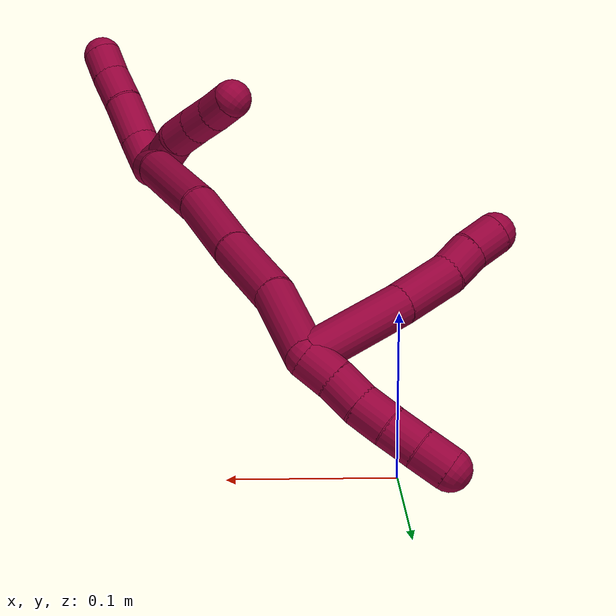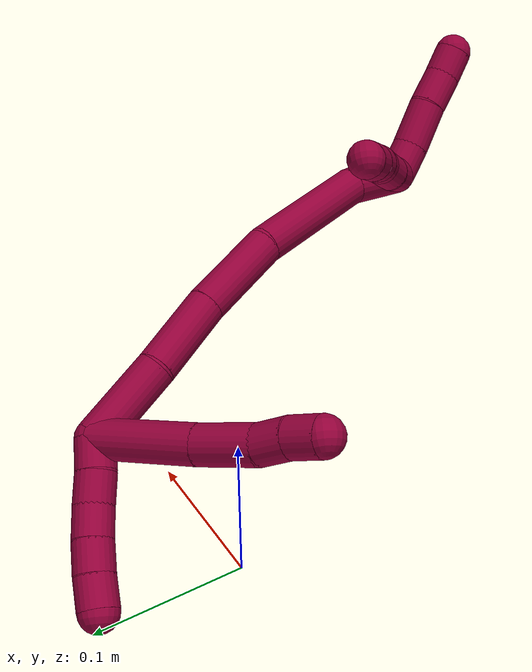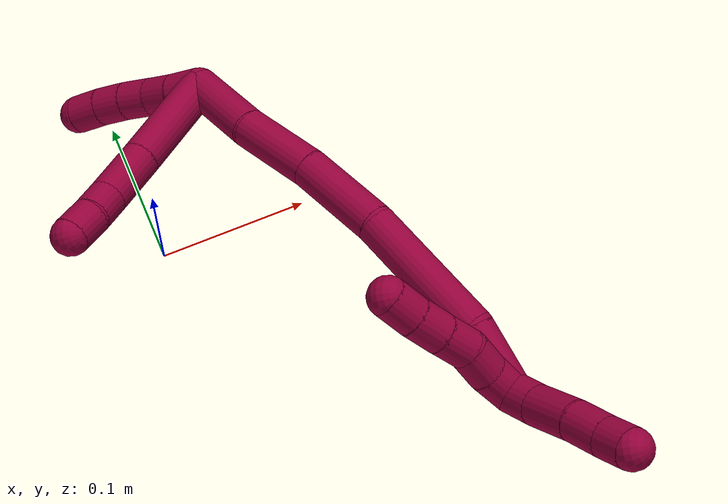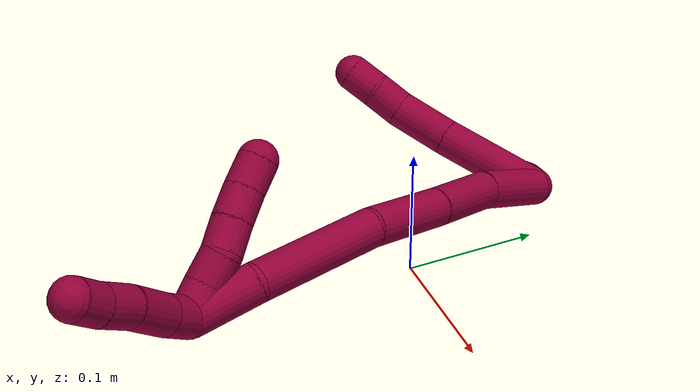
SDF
<sdf version="1.7">
 <world name="default">
  <model name="8">
   <static>0</static>
   <link name="8">
    <collision name="collision-cylinder-e_1_2_8">
     <pose>-0.028919 -0.017691 -0.008444 2.01614 -0.975088 -1.39807</pose>
     <geometry><cylinder><radius>0.0125</radius><length>0.069873</length></cylinder></geometry>
     <surface>
      <friction><ode><mu>1.16</mu><mu2>1.16</mu2><slip1>0</slip1><slip2>0</slip2></ode></friction>
      <contact><ode><kp>1e+06</kp><kd>1</kd><max_vel>0</max_vel><min_depth>0.001</min_depth></ode></contact>
     </surface>
    </collision>
    <visual name="visual-cylinder-e_1_2_8">
     <pose>-0.028919 -0.017691 -0.008444 2.01614 -0.975088 -1.39807</pose>
     <geometry><cylinder><radius>0.0125</radius><length>0.069873</length></cylinder></geometry>
     <material><ambient>0.584314 0 0.227451 1</ambient></material>
    </visual>
    <collision name="collision-cylinder-e_2_8_9">
     <pose>-0.074341 -0.044589 -0.020739 1.96685 -1.02691 -1.40552</pose>
     <geometry><cylinder><radius>0.0125</radius><length>0.038573</length></cylinder></geometry>
     <surface>
      <friction><ode><mu>1.16</mu><mu2>1.16</mu2><slip1>0</slip1><slip2>0</slip2></ode></friction>
      <contact><ode><kp>1e+06</kp><kd>1</kd><max_vel>0</max_vel><min_depth>0.001</min_depth></ode></contact>
     </surface>
    </collision>
    <visual name="visual-cylinder-e_2_8_9">
     <pose>-0.074341 -0.044589 -0.020739 1.96685 -1.02691 -1.40552</pose>
     <geometry><cylinder><radius>0.0125</radius><length>0.038573</length></cylinder></geometry>
     <material><ambient>0.584314 0 0.227451 1</ambient></material>
    </visual>
    <collision name="collision-cylinder-e_3_9_10">
     <pose>-0.100421 -0.057849 -0.024843 1.63357 -1.16979 -1.2283</pose>
     <geometry><cylinder><radius>0.0125</radius><length>0.020803</length></cylinder></geometry>
     <surface>
      <friction><ode><mu>1.16</mu><mu2>1.16</mu2><slip1>0</slip1><slip2>0</slip2></ode></friction>
      <contact><ode><kp>1e+06</kp><kd>1</kd><max_vel>0</max_vel><min_depth>0.001</min_depth></ode></contact>
     </surface>
    </collision>
    <visual name="visual-cylinder-e_3_9_10">
     <pose>-0.100421 -0.057849 -0.024843 1.63357 -1.16979 -1.2283</pose>
     <geometry><cylinder><radius>0.0125</radius><length>0.020803</length></cylinder></geometry>
     <material><ambient>0.584314 0 0.227451 1</ambient></material>
    </visual>
    <collision name="collision-cylinder-e_4_10_6">
     <pose>-0.119349 -0.065988 -0.026969 2.00001 -1.12273 -1.54997</pose>
     <geometry><cylinder><radius>0.0125</radius><length>0.020751</length></cylinder></geometry>
     <surface>
      <friction><ode><mu>1.16</mu><mu2>1.16</mu2><slip1>0</slip1><slip2>0</slip2></ode></friction>
      <contact><ode><kp>1e+06</kp><kd>1</kd><max_vel>0</max_vel><min_depth>0.001</min_depth></ode></contact>
     </surface>
    </collision>
    <visual name="visual-cylinder-e_4_10_6">
     <pose>-0.119349 -0.065988 -0.026969 2.00001 -1.12273 -1.54997</pose>
     <geometry><cylinder><radius>0.0125</radius><length>0.020751</length></cylinder></geometry>
     <material><ambient>0.584314 0 0.227451 1</ambient></material>
    </visual>
    <collision name="collision-cylinder-e_1_2_11">
     <pose>-0.000122 0.000304 -0.009995 -3.11118 -0.012227 0.764568</pose>
     <geometry><cylinder><radius>0.0125</radius><length>0.02</length></cylinder></geometry>
     <surface>
      <friction><ode><mu>1.16</mu><mu2>1.16</mu2><slip1>0</slip1><slip2>0</slip2></ode></friction>
      <contact><ode><kp>1e+06</kp><kd>1</kd><max_vel>0</max_vel><min_depth>0.001</min_depth></ode></contact>
     </surface>
    </collision>
    <visual name="visual-cylinder-e_1_2_11">
     <pose>-0.000122 0.000304 -0.009995 -3.11118 -0.012227 0.764568</pose>
     <geometry><cylinder><radius>0.0125</radius><length>0.02</length></cylinder></geometry>
     <material><ambient>0.584314 0 0.227451 1</ambient></material>
    </visual>
    <collision name="collision-cylinder-e_2_11_12">
     <pose>0.000718 0.001461 -0.029906 -3.05577 0.096416 -1.68709</pose>
     <geometry><cylinder><radius>0.0125</radius><length>0.02</length></cylinder></geometry>
     <surface>
      <friction><ode><mu>1.16</mu><mu2>1.16</mu2><slip1>0</slip1><slip2>0</slip2></ode></friction>
      <contact><ode><kp>1e+06</kp><kd>1</kd><max_vel>0</max_vel><min_depth>0.001</min_depth></ode></contact>
     </surface>
    </collision>
    <visual name="visual-cylinder-e_2_11_12">
     <pose>0.000718 0.001461 -0.029906 -3.05577 0.096416 -1.68709</pose>
     <geometry><cylinder><radius>0.0125</radius><length>0.02</length></cylinder></geometry>
     <material><ambient>0.584314 0 0.227451 1</ambient></material>
    </visual>
    <collision name="collision-cylinder-e_3_12_13">
     <pose>0.001293 0.003314 -0.049765 -3.04139 -0.038801 0.738377</pose>
     <geometry><cylinder><radius>0.0125</radius><length>0.02</length></cylinder></geometry>
     <surface>
      <friction><ode><mu>1.16</mu><mu2>1.16</mu2><slip1>0</slip1><slip2>0</slip2></ode></friction>
      <contact><ode><kp>1e+06</kp><kd>1</kd><max_vel>0</max_vel><min_depth>0.001</min_depth></ode></contact>
     </surface>
    </collision>
    <visual name="visual-cylinder-e_3_12_13">
     <pose>0.001293 0.003314 -0.049765 -3.04139 -0.038801 0.738377</pose>
     <geometry><cylinder><radius>0.0125</radius><length>0.02</length></cylinder></geometry>
     <material><ambient>0.584314 0 0.227451 1</ambient></material>
    </visual>
    <collision name="collision-cylinder-e_4_13_14">
     <pose>0.000234 0.004671 -0.069679 -3.10575 -0.067196 2.16184</pose>
     <geometry><cylinder><radius>0.0125</radius><length>0.02</length></cylinder></geometry>
     <surface>
      <friction><ode><mu>1.16</mu><mu2>1.16</mu2><slip1>0</slip1><slip2>0</slip2></ode></friction>
      <contact><ode><kp>1e+06</kp><kd>1</kd><max_vel>0</max_vel><min_depth>0.001</min_depth></ode></contact>
     </surface>
    </collision>
    <visual name="visual-cylinder-e_4_13_14">
     <pose>0.000234 0.004671 -0.069679 -3.10575 -0.067196 2.16184</pose>
     <geometry><cylinder><radius>0.0125</radius><length>0.02</length></cylinder></geometry>
     <material><ambient>0.584314 0 0.227451 1</ambient></material>
    </visual>
    <collision name="collision-cylinder-e_5_14_5">
     <pose>-0.001245 0.004691 -0.089611 3.10767 -0.080782 -2.34685</pose>
     <geometry><cylinder><radius>0.0125</radius><length>0.02</length></cylinder></geometry>
     <surface>
      <friction><ode><mu>1.16</mu><mu2>1.16</mu2><slip1>0</slip1><slip2>0</slip2></ode></friction>
      <contact><ode><kp>1e+06</kp><kd>1</kd><max_vel>0</max_vel><min_depth>0.001</min_depth></ode></contact>
     </surface>
    </collision>
    <visual name="visual-cylinder-e_5_14_5">
     <pose>-0.001245 0.004691 -0.089611 3.10767 -0.080782 -2.34685</pose>
     <geometry><cylinder><radius>0.0125</radius><length>0.02</length></cylinder></geometry>
     <material><ambient>0.584314 0 0.227451 1</ambient></material>
    </visual>
    <collision name="collision-cylinder-e_1_2_15">
     <pose>-0.008651 -0.016972 0.020206 0.698631 -0.316801 -0.116239</pose>
     <geometry><cylinder><radius>0.0125</radius><length>0.05554</length></cylinder></geometry>
     <surface>
      <friction><ode><mu>1.16</mu><mu2>1.16</mu2><slip1>0</slip1><slip2>0</slip2></ode></friction>
      <contact><ode><kp>1e+06</kp><kd>1</kd><max_vel>0</max_vel><min_depth>0.001</min_depth></ode></contact>
     </surface>
    </collision>
    <visual name="visual-cylinder-e_1_2_15">
     <pose>-0.008651 -0.016972 0.020206 0.698631 -0.316801 -0.116239</pose>
     <geometry><cylinder><radius>0.0125</radius><length>0.05554</length></cylinder></geometry>
     <material><ambient>0.584314 0 0.227451 1</ambient></material>
    </visual>
    <collision name="collision-cylinder-e_2_15_16">
     <pose>-0.021155 -0.05076 0.060874 0.687918 -0.144467 -0.051826</pose>
     <geometry><cylinder><radius>0.0125</radius><length>0.053529</length></cylinder></geometry>
     <surface>
      <friction><ode><mu>1.16</mu><mu2>1.16</mu2><slip1>0</slip1><slip2>0</slip2></ode></friction>
      <contact><ode><kp>1e+06</kp><kd>1</kd><max_vel>0</max_vel><min_depth>0.001</min_depth></ode></contact>
     </surface>
    </collision>
    <visual name="visual-cylinder-e_2_15_16">
     <pose>-0.021155 -0.05076 0.060874 0.687918 -0.144467 -0.051826</pose>
     <geometry><cylinder><radius>0.0125</radius><length>0.053529</length></cylinder></geometry>
     <material><ambient>0.584314 0 0.227451 1</ambient></material>
    </visual>
    <collision name="collision-cylinder-e_3_16_17">
     <pose>-0.030414 -0.088089 0.102275 0.775092 -0.182366 -0.074612</pose>
     <geometry><cylinder><radius>0.0125</radius><length>0.059613</length></cylinder></geometry>
     <surface>
      <friction><ode><mu>1.16</mu><mu2>1.16</mu2><slip1>0</slip1><slip2>0</slip2></ode></friction>
      <contact><ode><kp>1e+06</kp><kd>1</kd><max_vel>0</max_vel><min_depth>0.001</min_depth></ode></contact>
     </surface>
    </collision>
    <visual name="visual-cylinder-e_3_16_17">
     <pose>-0.030414 -0.088089 0.102275 0.775092 -0.182366 -0.074612</pose>
     <geometry><cylinder><radius>0.0125</radius><length>0.059613</length></cylinder></geometry>
     <material><ambient>0.584314 0 0.227451 1</ambient></material>
    </visual>
    <collision name="collision-cylinder-e_4_17_18">
     <pose>-0.039277 -0.144312 0.148718 0.950626 -0.078616 -0.040476</pose>
     <geometry><cylinder><radius>0.0125</radius><length>0.088038</length></cylinder></geometry>
     <surface>
      <friction><ode><mu>1.16</mu><mu2>1.16</mu2><slip1>0</slip1><slip2>0</slip2></ode></friction>
      <contact><ode><kp>1e+06</kp><kd>1</kd><max_vel>0</max_vel><min_depth>0.001</min_depth></ode></contact>
     </surface>
    </collision>
    <visual name="visual-cylinder-e_4_17_18">
     <pose>-0.039277 -0.144312 0.148718 0.950626 -0.078616 -0.040476</pose>
     <geometry><cylinder><radius>0.0125</radius><length>0.088038</length></cylinder></geometry>
     <material><ambient>0.584314 0 0.227451 1</ambient></material>
    </visual>
    <collision name="collision-cylinder-e_5_18_1">
     <pose>-0.043578 -0.200368 0.181548 1.22515 -0.039008 -0.027415</pose>
     <geometry><cylinder><radius>0.0125</radius><length>0.04328</length></cylinder></geometry>
     <surface>
      <friction><ode><mu>1.16</mu><mu2>1.16</mu2><slip1>0</slip1><slip2>0</slip2></ode></friction>
      <contact><ode><kp>1e+06</kp><kd>1</kd><max_vel>0</max_vel><min_depth>0.001</min_depth></ode></contact>
     </surface>
    </collision>
    <visual name="visual-cylinder-e_5_18_1">
     <pose>-0.043578 -0.200368 0.181548 1.22515 -0.039008 -0.027415</pose>
     <geometry><cylinder><radius>0.0125</radius><length>0.04328</length></cylinder></geometry>
     <material><ambient>0.584314 0 0.227451 1</ambient></material>
    </visual>
    <collision name="collision-cylinder-e_1_1_19">
     <pose>-0.050047 -0.21297 0.185976 -1.92892 -0.597471 0.835819</pose>
     <geometry><cylinder><radius>0.0125</radius><length>0.02</length></cylinder></geometry>
     <surface>
      <friction><ode><mu>1.16</mu><mu2>1.16</mu2><slip1>0</slip1><slip2>0</slip2></ode></friction>
      <contact><ode><kp>1e+06</kp><kd>1</kd><max_vel>0</max_vel><min_depth>0.001</min_depth></ode></contact>
     </surface>
    </collision>
    <visual name="visual-cylinder-e_1_1_19">
     <pose>-0.050047 -0.21297 0.185976 -1.92892 -0.597471 0.835819</pose>
     <geometry><cylinder><radius>0.0125</radius><length>0.02</length></cylinder></geometry>
     <material><ambient>0.584314 0 0.227451 1</ambient></material>
    </visual>
    <collision name="collision-cylinder-e_2_19_20">
     <pose>-0.061089 -0.196935 0.1817 -1.73547 -0.572397 0.668382</pose>
     <geometry><cylinder><radius>0.0125</radius><length>0.02</length></cylinder></geometry>
     <surface>
      <friction><ode><mu>1.16</mu><mu2>1.16</mu2><slip1>0</slip1><slip2>0</slip2></ode></friction>
      <contact><ode><kp>1e+06</kp><kd>1</kd><max_vel>0</max_vel><min_depth>0.001</min_depth></ode></contact>
     </surface>
    </collision>
    <visual name="visual-cylinder-e_2_19_20">
     <pose>-0.061089 -0.196935 0.1817 -1.73547 -0.572397 0.668382</pose>
     <geometry><cylinder><radius>0.0125</radius><length>0.02</length></cylinder></geometry>
     <material><ambient>0.584314 0 0.227451 1</ambient></material>
    </visual>
    <collision name="collision-cylinder-e_3_20_21">
     <pose>-0.073071 -0.181936 0.17687 -2.04623 -0.716223 1.10073</pose>
     <geometry><cylinder><radius>0.0125</radius><length>0.02</length></cylinder></geometry>
     <surface>
      <friction><ode><mu>1.16</mu><mu2>1.16</mu2><slip1>0</slip1><slip2>0</slip2></ode></friction>
      <contact><ode><kp>1e+06</kp><kd>1</kd><max_vel>0</max_vel><min_depth>0.001</min_depth></ode></contact>
     </surface>
    </collision>
    <visual name="visual-cylinder-e_3_20_21">
     <pose>-0.073071 -0.181936 0.17687 -2.04623 -0.716223 1.10073</pose>
     <geometry><cylinder><radius>0.0125</radius><length>0.02</length></cylinder></geometry>
     <material><ambient>0.584314 0 0.227451 1</ambient></material>
    </visual>
    <collision name="collision-cylinder-e_4_21_22">
     <pose>-0.085722 -0.168203 0.169732 -2.05382 -0.654281 1.0227</pose>
     <geometry><cylinder><radius>0.0125</radius><length>0.02</length></cylinder></geometry>
     <surface>
      <friction><ode><mu>1.16</mu><mu2>1.16</mu2><slip1>0</slip1><slip2>0</slip2></ode></friction>
      <contact><ode><kp>1e+06</kp><kd>1</kd><max_vel>0</max_vel><min_depth>0.001</min_depth></ode></contact>
     </surface>
    </collision>
    <visual name="visual-cylinder-e_4_21_22">
     <pose>-0.085722 -0.168203 0.169732 -2.05382 -0.654281 1.0227</pose>
     <geometry><cylinder><radius>0.0125</radius><length>0.02</length></cylinder></geometry>
     <material><ambient>0.584314 0 0.227451 1</ambient></material>
    </visual>
    <collision name="collision-cylinder-e_5_22_4">
     <pose>-0.097555 -0.153647 0.162836 -1.97385 -0.612168 0.892262</pose>
     <geometry><cylinder><radius>0.0125</radius><length>0.02</length></cylinder></geometry>
     <surface>
      <friction><ode><mu>1.16</mu><mu2>1.16</mu2><slip1>0</slip1><slip2>0</slip2></ode></friction>
      <contact><ode><kp>1e+06</kp><kd>1</kd><max_vel>0</max_vel><min_depth>0.001</min_depth></ode></contact>
     </surface>
    </collision>
    <visual name="visual-cylinder-e_5_22_4">
     <pose>-0.097555 -0.153647 0.162836 -1.97385 -0.612168 0.892262</pose>
     <geometry><cylinder><radius>0.0125</radius><length>0.02</length></cylinder></geometry>
     <material><ambient>0.584314 0 0.227451 1</ambient></material>
    </visual>
    <collision name="collision-cylinder-e_1_1_23">
     <pose>-0.048814 -0.224956 0.198367 0.420378 -0.399732 -0.086379</pose>
     <geometry><cylinder><radius>0.0125</radius><length>0.022575</length></cylinder></geometry>
     <surface>
      <friction><ode><mu>1.16</mu><mu2>1.16</mu2><slip1>0</slip1><slip2>0</slip2></ode></friction>
      <contact><ode><kp>1e+06</kp><kd>1</kd><max_vel>0</max_vel><min_depth>0.001</min_depth></ode></contact>
     </surface>
    </collision>
    <visual name="visual-cylinder-e_1_1_23">
     <pose>-0.048814 -0.224956 0.198367 0.420378 -0.399732 -0.086379</pose>
     <geometry><cylinder><radius>0.0125</radius><length>0.022575</length></cylinder></geometry>
     <material><ambient>0.584314 0 0.227451 1</ambient></material>
    </visual>
    <collision name="collision-cylinder-e_2_23_24">
     <pose>-0.060128 -0.233923 0.221846 0.325673 -0.43837 -0.073163</pose>
     <geometry><cylinder><radius>0.0125</radius><length>0.032611</length></cylinder></geometry>
     <surface>
      <friction><ode><mu>1.16</mu><mu2>1.16</mu2><slip1>0</slip1><slip2>0</slip2></ode></friction>
      <contact><ode><kp>1e+06</kp><kd>1</kd><max_vel>0</max_vel><min_depth>0.001</min_depth></ode></contact>
     </surface>
    </collision>
    <visual name="visual-cylinder-e_2_23_24">
     <pose>-0.060128 -0.233923 0.221846 0.325673 -0.43837 -0.073163</pose>
     <geometry><cylinder><radius>0.0125</radius><length>0.032611</length></cylinder></geometry>
     <material><ambient>0.584314 0 0.227451 1</ambient></material>
    </visual>
    <collision name="collision-cylinder-e_3_24_25">
     <pose>-0.071612 -0.243523 0.246157 0.441305 -0.380193 -0.086268</pose>
     <geometry><cylinder><radius>0.0125</radius><length>0.024589</length></cylinder></geometry>
     <surface>
      <friction><ode><mu>1.16</mu><mu2>1.16</mu2><slip1>0</slip1><slip2>0</slip2></ode></friction>
      <contact><ode><kp>1e+06</kp><kd>1</kd><max_vel>0</max_vel><min_depth>0.001</min_depth></ode></contact>
     </surface>
    </collision>
    <visual name="visual-cylinder-e_3_24_25">
     <pose>-0.071612 -0.243523 0.246157 0.441305 -0.380193 -0.086268</pose>
     <geometry><cylinder><radius>0.0125</radius><length>0.024589</length></cylinder></geometry>
     <material><ambient>0.584314 0 0.227451 1</ambient></material>
    </visual>
    <collision name="collision-cylinder-e_4_25_3">
     <pose>-0.080594 -0.251583 0.265 0.357609 -0.452364 -0.083133</pose>
     <geometry><cylinder><radius>0.0125</radius><length>0.020225</length></cylinder></geometry>
     <surface>
      <friction><ode><mu>1.16</mu><mu2>1.16</mu2><slip1>0</slip1><slip2>0</slip2></ode></friction>
      <contact><ode><kp>1e+06</kp><kd>1</kd><max_vel>0</max_vel><min_depth>0.001</min_depth></ode></contact>
     </surface>
    </collision>
    <visual name="visual-cylinder-e_4_25_3">
     <pose>-0.080594 -0.251583 0.265 0.357609 -0.452364 -0.083133</pose>
     <geometry><cylinder><radius>0.0125</radius><length>0.020225</length></cylinder></geometry>
     <material><ambient>0.584314 0 0.227451 1</ambient></material>
    </visual>
    <collision name="collision-sphere-3">
     <pose>-0.085015 -0.254767 0.27352 0 -0 0</pose>
     <geometry><sphere><radius>0.0125</radius></sphere></geometry>
     <surface>
      <friction><ode><mu>1.16</mu><mu2>1.16</mu2><slip1>0</slip1><slip2>0</slip2></ode></friction>
      <contact><ode><kp>1e+06</kp><kd>1</kd><max_vel>0</max_vel><min_depth>0.001</min_depth></ode></contact>
     </surface>
    </collision>
    <visual name="visual-sphere-3">
     <pose>-0.085015 -0.254767 0.27352 0 -0 0</pose>
     <geometry><sphere><radius>0.0125</radius></sphere></geometry>
     <material><ambient>0.584314 0 0.227451 1</ambient></material>
    </visual>
    <collision name="collision-sphere-25">
     <pose>-0.076174 -0.248399 0.25648 0 -0 0</pose>
     <geometry><sphere><radius>0.0125</radius></sphere></geometry>
     <surface>
      <friction><ode><mu>1.16</mu><mu2>1.16</mu2><slip1>0</slip1><slip2>0</slip2></ode></friction>
      <contact><ode><kp>1e+06</kp><kd>1</kd><max_vel>0</max_vel><min_depth>0.001</min_depth></ode></contact>
     </surface>
    </collision>
    <visual name="visual-sphere-25">
     <pose>-0.076174 -0.248399 0.25648 0 -0 0</pose>
     <geometry><sphere><radius>0.0125</radius></sphere></geometry>
     <material><ambient>0.584314 0 0.227451 1</ambient></material>
    </visual>
    <collision name="collision-sphere-24">
     <pose>-0.067049 -0.238647 0.235834 0 -0 0</pose>
     <geometry><sphere><radius>0.0125</radius></sphere></geometry>
     <surface>
      <friction><ode><mu>1.16</mu><mu2>1.16</mu2><slip1>0</slip1><slip2>0</slip2></ode></friction>
      <contact><ode><kp>1e+06</kp><kd>1</kd><max_vel>0</max_vel><min_depth>0.001</min_depth></ode></contact>
     </surface>
    </collision>
    <visual name="visual-sphere-24">
     <pose>-0.067049 -0.238647 0.235834 0 -0 0</pose>
     <geometry><sphere><radius>0.0125</radius></sphere></geometry>
     <material><ambient>0.584314 0 0.227451 1</ambient></material>
    </visual>
    <collision name="collision-sphere-23">
     <pose>-0.053207 -0.2292 0.207859 0 -0 0</pose>
     <geometry><sphere><radius>0.0125</radius></sphere></geometry>
     <surface>
      <friction><ode><mu>1.16</mu><mu2>1.16</mu2><slip1>0</slip1><slip2>0</slip2></ode></friction>
      <contact><ode><kp>1e+06</kp><kd>1</kd><max_vel>0</max_vel><min_depth>0.001</min_depth></ode></contact>
     </surface>
    </collision>
    <visual name="visual-sphere-23">
     <pose>-0.053207 -0.2292 0.207859 0 -0 0</pose>
     <geometry><sphere><radius>0.0125</radius></sphere></geometry>
     <material><ambient>0.584314 0 0.227451 1</ambient></material>
    </visual>
    <collision name="collision-sphere-4">
     <pose>-0.103301 -0.146119 0.159626 0 -0 0</pose>
     <geometry><sphere><radius>0.0125</radius></sphere></geometry>
     <surface>
      <friction><ode><mu>1.16</mu><mu2>1.16</mu2><slip1>0</slip1><slip2>0</slip2></ode></friction>
      <contact><ode><kp>1e+06</kp><kd>1</kd><max_vel>0</max_vel><min_depth>0.001</min_depth></ode></contact>
     </surface>
    </collision>
    <visual name="visual-sphere-4">
     <pose>-0.103301 -0.146119 0.159626 0 -0 0</pose>
     <geometry><sphere><radius>0.0125</radius></sphere></geometry>
     <material><ambient>0.584314 0 0.227451 1</ambient></material>
    </visual>
    <collision name="collision-sphere-22">
     <pose>-0.091808 -0.161175 0.166046 0 -0 0</pose>
     <geometry><sphere><radius>0.0125</radius></sphere></geometry>
     <surface>
      <friction><ode><mu>1.16</mu><mu2>1.16</mu2><slip1>0</slip1><slip2>0</slip2></ode></friction>
      <contact><ode><kp>1e+06</kp><kd>1</kd><max_vel>0</max_vel><min_depth>0.001</min_depth></ode></contact>
     </surface>
    </collision>
    <visual name="visual-sphere-22">
     <pose>-0.091808 -0.161175 0.166046 0 -0 0</pose>
     <geometry><sphere><radius>0.0125</radius></sphere></geometry>
     <material><ambient>0.584314 0 0.227451 1</ambient></material>
    </visual>
    <collision name="collision-sphere-21">
     <pose>-0.079637 -0.17523 0.173417 0 -0 0</pose>
     <geometry><sphere><radius>0.0125</radius></sphere></geometry>
     <surface>
      <friction><ode><mu>1.16</mu><mu2>1.16</mu2><slip1>0</slip1><slip2>0</slip2></ode></friction>
      <contact><ode><kp>1e+06</kp><kd>1</kd><max_vel>0</max_vel><min_depth>0.001</min_depth></ode></contact>
     </surface>
    </collision>
    <visual name="visual-sphere-21">
     <pose>-0.079637 -0.17523 0.173417 0 -0 0</pose>
     <geometry><sphere><radius>0.0125</radius></sphere></geometry>
     <material><ambient>0.584314 0 0.227451 1</ambient></material>
    </visual>
    <collision name="collision-sphere-20">
     <pose>-0.066506 -0.188642 0.180322 0 -0 0</pose>
     <geometry><sphere><radius>0.0125</radius></sphere></geometry>
     <surface>
      <friction><ode><mu>1.16</mu><mu2>1.16</mu2><slip1>0</slip1><slip2>0</slip2></ode></friction>
      <contact><ode><kp>1e+06</kp><kd>1</kd><max_vel>0</max_vel><min_depth>0.001</min_depth></ode></contact>
     </surface>
    </collision>
    <visual name="visual-sphere-20">
     <pose>-0.066506 -0.188642 0.180322 0 -0 0</pose>
     <geometry><sphere><radius>0.0125</radius></sphere></geometry>
     <material><ambient>0.584314 0 0.227451 1</ambient></material>
    </visual>
    <collision name="collision-sphere-11">
     <pose>-0.000245 0.000608 -0.019989 0 -0 0</pose>
     <geometry><sphere><radius>0.0125</radius></sphere></geometry>
     <surface>
      <friction><ode><mu>1.16</mu><mu2>1.16</mu2><slip1>0</slip1><slip2>0</slip2></ode></friction>
      <contact><ode><kp>1e+06</kp><kd>1</kd><max_vel>0</max_vel><min_depth>0.001</min_depth></ode></contact>
     </surface>
    </collision>
    <visual name="visual-sphere-11">
     <pose>-0.000245 0.000608 -0.019989 0 -0 0</pose>
     <geometry><sphere><radius>0.0125</radius></sphere></geometry>
     <material><ambient>0.584314 0 0.227451 1</ambient></material>
    </visual>
    <collision name="collision-sphere-6">
     <pose>-0.1287 -0.070075 -0.028839 0 -0 0</pose>
     <geometry><sphere><radius>0.0125</radius></sphere></geometry>
     <surface>
      <friction><ode><mu>1.16</mu><mu2>1.16</mu2><slip1>0</slip1><slip2>0</slip2></ode></friction>
      <contact><ode><kp>1e+06</kp><kd>1</kd><max_vel>0</max_vel><min_depth>0.001</min_depth></ode></contact>
     </surface>
    </collision>
    <visual name="visual-sphere-6">
     <pose>-0.1287 -0.070075 -0.028839 0 -0 0</pose>
     <geometry><sphere><radius>0.0125</radius></sphere></geometry>
     <material><ambient>0.584314 0 0.227451 1</ambient></material>
    </visual>
    <collision name="collision-sphere-10">
     <pose>-0.109997 -0.061901 -0.025098 0 -0 0</pose>
     <geometry><sphere><radius>0.0125</radius></sphere></geometry>
     <surface>
      <friction><ode><mu>1.16</mu><mu2>1.16</mu2><slip1>0</slip1><slip2>0</slip2></ode></friction>
      <contact><ode><kp>1e+06</kp><kd>1</kd><max_vel>0</max_vel><min_depth>0.001</min_depth></ode></contact>
     </surface>
    </collision>
    <visual name="visual-sphere-10">
     <pose>-0.109997 -0.061901 -0.025098 0 -0 0</pose>
     <geometry><sphere><radius>0.0125</radius></sphere></geometry>
     <material><ambient>0.584314 0 0.227451 1</ambient></material>
    </visual>
    <collision name="collision-sphere-9">
     <pose>-0.090845 -0.053797 -0.024589 0 -0 0</pose>
     <geometry><sphere><radius>0.0125</radius></sphere></geometry>
     <surface>
      <friction><ode><mu>1.16</mu><mu2>1.16</mu2><slip1>0</slip1><slip2>0</slip2></ode></friction>
      <contact><ode><kp>1e+06</kp><kd>1</kd><max_vel>0</max_vel><min_depth>0.001</min_depth></ode></contact>
     </surface>
    </collision>
    <visual name="visual-sphere-9">
     <pose>-0.090845 -0.053797 -0.024589 0 -0 0</pose>
     <geometry><sphere><radius>0.0125</radius></sphere></geometry>
     <material><ambient>0.584314 0 0.227451 1</ambient></material>
    </visual>
    <collision name="collision-sphere-2">
     <geometry><sphere><radius>0.0125</radius></sphere></geometry>
     <surface>
      <friction><ode><mu>1.16</mu><mu2>1.16</mu2><slip1>0</slip1><slip2>0</slip2></ode></friction>
      <contact><ode><kp>1e+06</kp><kd>1</kd><max_vel>0</max_vel><min_depth>0.001</min_depth></ode></contact>
     </surface>
    </collision>
    <visual name="visual-sphere-2">
     <geometry><sphere><radius>0.0125</radius></sphere></geometry>
     <material><ambient>0.584314 0 0.227451 1</ambient></material>
    </visual>
    <collision name="collision-sphere-19">
     <pose>-0.055673 -0.205227 0.183078 0 -0 0</pose>
     <geometry><sphere><radius>0.0125</radius></sphere></geometry>
     <surface>
      <friction><ode><mu>1.16</mu><mu2>1.16</mu2><slip1>0</slip1><slip2>0</slip2></ode></friction>
      <contact><ode><kp>1e+06</kp><kd>1</kd><max_vel>0</max_vel><min_depth>0.001</min_depth></ode></contact>
     </surface>
    </collision>
    <visual name="visual-sphere-19">
     <pose>-0.055673 -0.205227 0.183078 0 -0 0</pose>
     <geometry><sphere><radius>0.0125</radius></sphere></geometry>
     <material><ambient>0.584314 0 0.227451 1</ambient></material>
    </visual>
    <collision name="collision-sphere-8">
     <pose>-0.057838 -0.035382 -0.016888 0 -0 0</pose>
     <geometry><sphere><radius>0.0125</radius></sphere></geometry>
     <surface>
      <friction><ode><mu>1.16</mu><mu2>1.16</mu2><slip1>0</slip1><slip2>0</slip2></ode></friction>
      <contact><ode><kp>1e+06</kp><kd>1</kd><max_vel>0</max_vel><min_depth>0.001</min_depth></ode></contact>
     </surface>
    </collision>
    <visual name="visual-sphere-8">
     <pose>-0.057838 -0.035382 -0.016888 0 -0 0</pose>
     <geometry><sphere><radius>0.0125</radius></sphere></geometry>
     <material><ambient>0.584314 0 0.227451 1</ambient></material>
    </visual>
    <collision name="collision-sphere-12">
     <pose>0.001681 0.002314 -0.039823 0 -0 0</pose>
     <geometry><sphere><radius>0.0125</radius></sphere></geometry>
     <surface>
      <friction><ode><mu>1.16</mu><mu2>1.16</mu2><slip1>0</slip1><slip2>0</slip2></ode></friction>
      <contact><ode><kp>1e+06</kp><kd>1</kd><max_vel>0</max_vel><min_depth>0.001</min_depth></ode></contact>
     </surface>
    </collision>
    <visual name="visual-sphere-12">
     <pose>0.001681 0.002314 -0.039823 0 -0 0</pose>
     <geometry><sphere><radius>0.0125</radius></sphere></geometry>
     <material><ambient>0.584314 0 0.227451 1</ambient></material>
    </visual>
    <collision name="collision-sphere-13">
     <pose>0.000905 0.004314 -0.059708 0 -0 0</pose>
     <geometry><sphere><radius>0.0125</radius></sphere></geometry>
     <surface>
      <friction><ode><mu>1.16</mu><mu2>1.16</mu2><slip1>0</slip1><slip2>0</slip2></ode></friction>
      <contact><ode><kp>1e+06</kp><kd>1</kd><max_vel>0</max_vel><min_depth>0.001</min_depth></ode></contact>
     </surface>
    </collision>
    <visual name="visual-sphere-13">
     <pose>0.000905 0.004314 -0.059708 0 -0 0</pose>
     <geometry><sphere><radius>0.0125</radius></sphere></geometry>
     <material><ambient>0.584314 0 0.227451 1</ambient></material>
    </visual>
    <collision name="collision-sphere-14">
     <pose>-0.000438 0.005029 -0.07965 0 -0 0</pose>
     <geometry><sphere><radius>0.0125</radius></sphere></geometry>
     <surface>
      <friction><ode><mu>1.16</mu><mu2>1.16</mu2><slip1>0</slip1><slip2>0</slip2></ode></friction>
      <contact><ode><kp>1e+06</kp><kd>1</kd><max_vel>0</max_vel><min_depth>0.001</min_depth></ode></contact>
     </surface>
    </collision>
    <visual name="visual-sphere-14">
     <pose>-0.000438 0.005029 -0.07965 0 -0 0</pose>
     <geometry><sphere><radius>0.0125</radius></sphere></geometry>
     <material><ambient>0.584314 0 0.227451 1</ambient></material>
    </visual>
    <collision name="collision-sphere-5">
     <pose>-0.002052 0.004353 -0.099573 0 -0 0</pose>
     <geometry><sphere><radius>0.0125</radius></sphere></geometry>
     <surface>
      <friction><ode><mu>1.16</mu><mu2>1.16</mu2><slip1>0</slip1><slip2>0</slip2></ode></friction>
      <contact><ode><kp>1e+06</kp><kd>1</kd><max_vel>0</max_vel><min_depth>0.001</min_depth></ode></contact>
     </surface>
    </collision>
    <visual name="visual-sphere-5">
     <pose>-0.002052 0.004353 -0.099573 0 -0 0</pose>
     <geometry><sphere><radius>0.0125</radius></sphere></geometry>
     <material><ambient>0.584314 0 0.227451 1</ambient></material>
    </visual>
    <collision name="collision-sphere-15">
     <pose>-0.017302 -0.033944 0.040412 0 -0 0</pose>
     <geometry><sphere><radius>0.0125</radius></sphere></geometry>
     <surface>
      <friction><ode><mu>1.16</mu><mu2>1.16</mu2><slip1>0</slip1><slip2>0</slip2></ode></friction>
      <contact><ode><kp>1e+06</kp><kd>1</kd><max_vel>0</max_vel><min_depth>0.001</min_depth></ode></contact>
     </surface>
    </collision>
    <visual name="visual-sphere-15">
     <pose>-0.017302 -0.033944 0.040412 0 -0 0</pose>
     <geometry><sphere><radius>0.0125</radius></sphere></geometry>
     <material><ambient>0.584314 0 0.227451 1</ambient></material>
    </visual>
    <collision name="collision-sphere-16">
     <pose>-0.025009 -0.067577 0.081336 0 -0 0</pose>
     <geometry><sphere><radius>0.0125</radius></sphere></geometry>
     <surface>
      <friction><ode><mu>1.16</mu><mu2>1.16</mu2><slip1>0</slip1><slip2>0</slip2></ode></friction>
      <contact><ode><kp>1e+06</kp><kd>1</kd><max_vel>0</max_vel><min_depth>0.001</min_depth></ode></contact>
     </surface>
    </collision>
    <visual name="visual-sphere-16">
     <pose>-0.025009 -0.067577 0.081336 0 -0 0</pose>
     <geometry><sphere><radius>0.0125</radius></sphere></geometry>
     <material><ambient>0.584314 0 0.227451 1</ambient></material>
    </visual>
    <collision name="collision-sphere-17">
     <pose>-0.03582 -0.108601 0.123214 0 -0 0</pose>
     <geometry><sphere><radius>0.0125</radius></sphere></geometry>
     <surface>
      <friction><ode><mu>1.16</mu><mu2>1.16</mu2><slip1>0</slip1><slip2>0</slip2></ode></friction>
      <contact><ode><kp>1e+06</kp><kd>1</kd><max_vel>0</max_vel><min_depth>0.001</min_depth></ode></contact>
     </surface>
    </collision>
    <visual name="visual-sphere-17">
     <pose>-0.03582 -0.108601 0.123214 0 -0 0</pose>
     <geometry><sphere><radius>0.0125</radius></sphere></geometry>
     <material><ambient>0.584314 0 0.227451 1</ambient></material>
    </visual>
    <collision name="collision-sphere-18">
     <pose>-0.042734 -0.180024 0.174222 0 -0 0</pose>
     <geometry><sphere><radius>0.0125</radius></sphere></geometry>
     <surface>
      <friction><ode><mu>1.16</mu><mu2>1.16</mu2><slip1>0</slip1><slip2>0</slip2></ode></friction>
      <contact><ode><kp>1e+06</kp><kd>1</kd><max_vel>0</max_vel><min_depth>0.001</min_depth></ode></contact>
     </surface>
    </collision>
    <visual name="visual-sphere-18">
     <pose>-0.042734 -0.180024 0.174222 0 -0 0</pose>
     <geometry><sphere><radius>0.0125</radius></sphere></geometry>
     <material><ambient>0.584314 0 0.227451 1</ambient></material>
    </visual>
    <collision name="collision-sphere-1">
     <pose>-0.044422 -0.220713 0.188874 0 -0 0</pose>
     <geometry><sphere><radius>0.0125</radius></sphere></geometry>
     <surface>
      <friction><ode><mu>1.16</mu><mu2>1.16</mu2><slip1>0</slip1><slip2>0</slip2></ode></friction>
      <contact><ode><kp>1e+06</kp><kd>1</kd><max_vel>0</max_vel><min_depth>0.001</min_depth></ode></contact>
     </surface>
    </collision>
    <visual name="visual-sphere-1">
     <pose>-0.044422 -0.220713 0.188874 0 -0 0</pose>
     <geometry><sphere><radius>0.0125</radius></sphere></geometry>
     <material><ambient>0.584314 0 0.227451 1</ambient></material>
    </visual>
    <inertial>
     <pose>-0.042679 -0.103447 0.0862 0 -0 0</pose>
     <mass>0.75</mass>
     <inertia><ixx>8.9e-05</ixx><ixy>0</ixy><ixz>0</ixz><iyy>7.2e-05</iyy><iyz>0</iyz><izz>0.000175</izz></inertia>
    </inertial>
   </link>
   <pose>0.056326 0.06415 0.093557 0.620208 0.803047 0.359011</pose>
  </model>
 </world>
</sdf>
